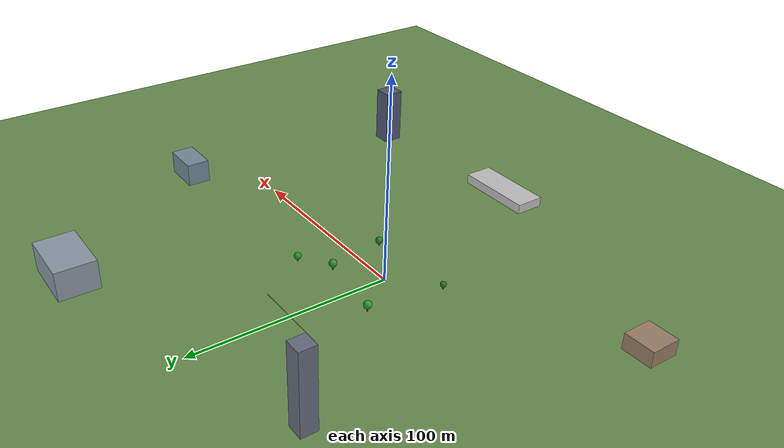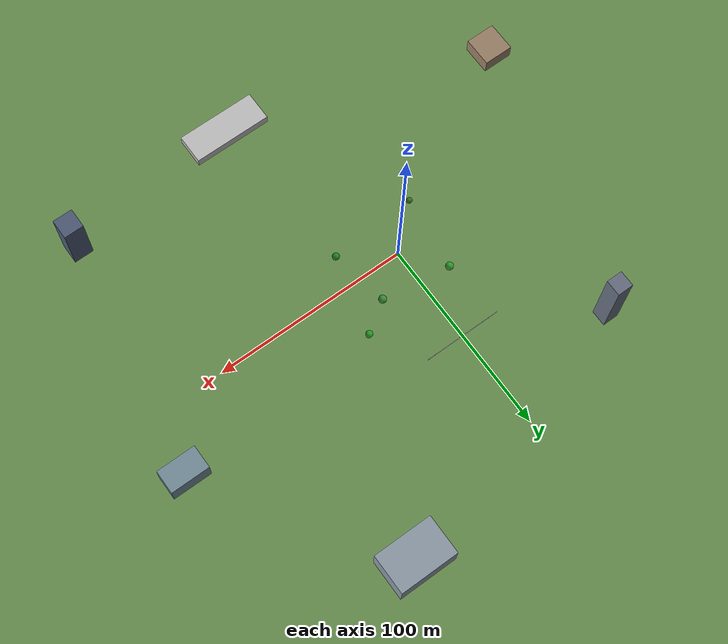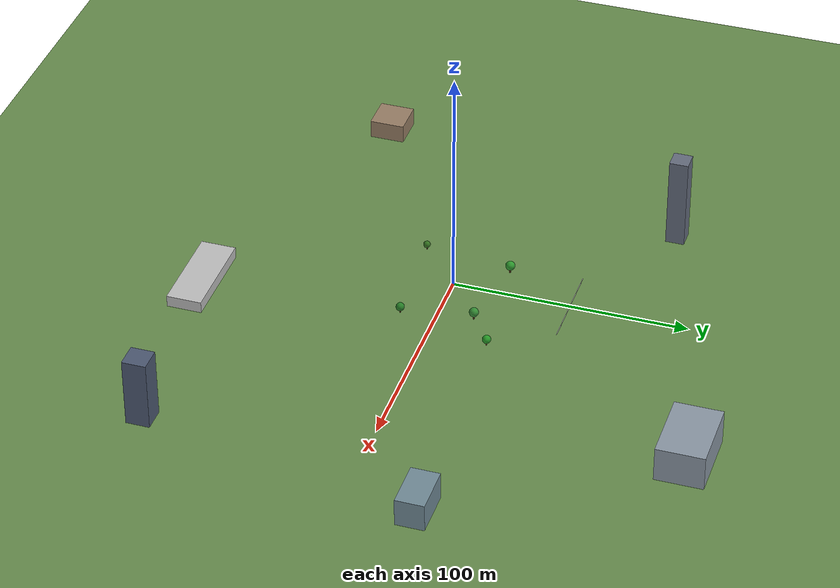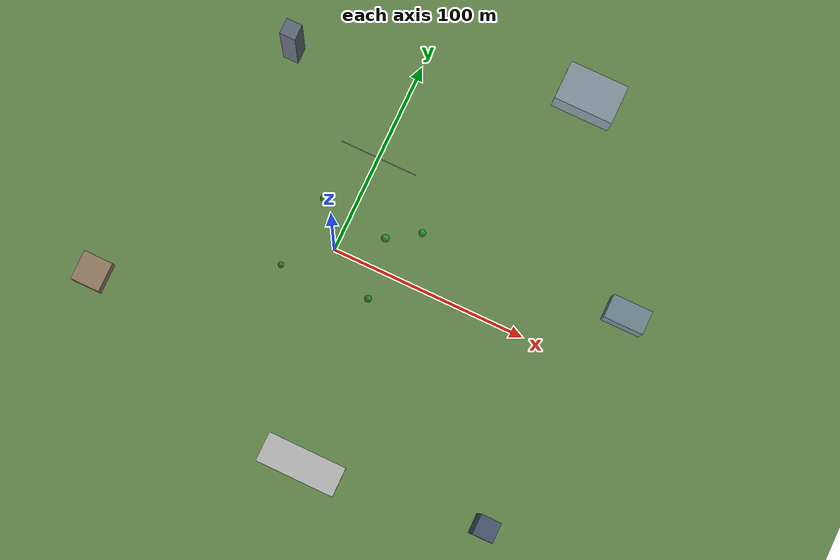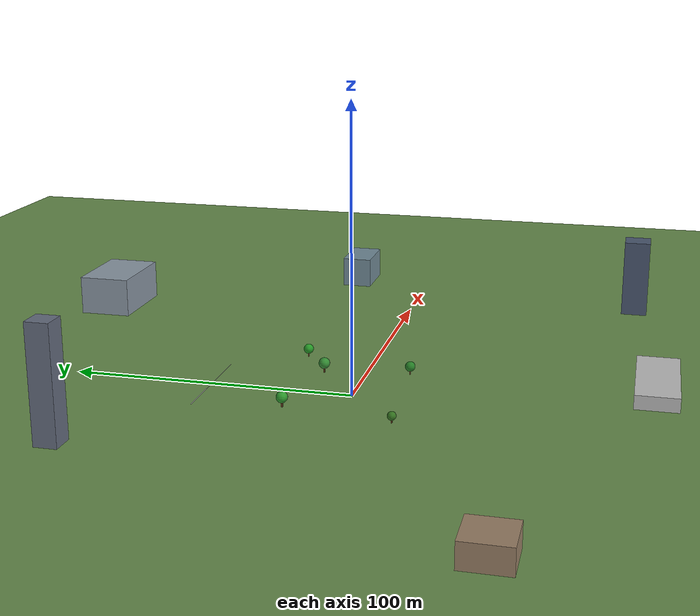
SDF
<?xml version="1.0" encoding="UTF-8"?>
<sdf version="1.9">
  <world name="scene">
    <physics type="ode">
      <max_step_size>0.004</max_step_size>
      <real_time_factor>1.0</real_time_factor>
      <real_time_update_rate>250</real_time_update_rate>
    </physics>
    <gravity>0 0 -9.8</gravity>
    <magnetic_field>6e-06 2.3e-05 -4.2e-05</magnetic_field>
    <atmosphere type="adiabatic"/>

    <!-- Scene: sky + ambient -->
    <scene>
      <grid>false</grid>
      <ambient>0.45 0.45 0.5 1</ambient>
      <background>0.6 0.7 0.9 1</background>
      <shadows>true</shadows>
    </scene>

    <!-- ====== GROUND ====== -->
    <model name="ground_plane">
      <static>true</static>
      <link name="link">
        <collision name="collision">
          <geometry>
            <plane>
              <normal>0 0 1</normal>
              <size>1 1</size>
            </plane>
          </geometry>
          <surface>
            <friction><ode/></friction>
            <bounce/><contact/>
          </surface>
        </collision>
        <visual name="visual">
          <geometry>
            <plane>
              <normal>0 0 1</normal>
              <size>500 500</size>
            </plane>
          </geometry>
          <material>
            <ambient>0.35 0.45 0.25 1</ambient>
            <diffuse>0.4 0.55 0.3 1</diffuse>
            <specular>0.05 0.05 0.05 1</specular>
          </material>
        </visual>
        <pose>0 0 0 0 -0 0</pose>
        <inertial>
          <pose>0 0 0 0 -0 0</pose>
          <mass>1</mass>
          <inertia>
            <ixx>1</ixx><ixy>0</ixy><ixz>0</ixz>
            <iyy>1</iyy><iyz>0</iyz>
            <izz>1</izz>
          </inertia>
        </inertial>
        <enable_wind>false</enable_wind>
      </link>
      <pose>0 0 0 0 -0 0</pose>
      <self_collide>false</self_collide>
    </model>

    <!-- ====== SUN ====== -->
    <light name="sunUTC" type="directional">
      <pose>0 0 500 0 -0 0</pose>
      <cast_shadows>true</cast_shadows>
      <intensity>1.2</intensity>
      <direction>0.001 0.625 -0.78</direction>
      <diffuse>0.95 0.95 0.92 1</diffuse>
      <specular>0.3 0.3 0.3 1</specular>
      <attenuation>
        <range>2000</range>
        <linear>0</linear>
        <constant>1</constant>
        <quadratic>0</quadratic>
      </attenuation>
      <spot>
        <inner_angle>0</inner_angle>
        <outer_angle>0</outer_angle>
        <falloff>0</falloff>
      </spot>
    </light>

    <!-- ====== BUILDINGS (box primitives) ====== -->

    <!-- Building 1: large office (north-east) -->
    <model name="building_01">
      <static>true</static>
      <link name="link">
        <collision name="collision">
          <geometry><box><size>30 20 15</size></box></geometry>
        </collision>
        <visual name="visual">
          <geometry><box><size>30 20 15</size></box></geometry>
          <material>
            <ambient>0.5 0.55 0.6 1</ambient>
            <diffuse>0.55 0.6 0.65 1</diffuse>
            <specular>0.1 0.1 0.1 1</specular>
          </material>
        </visual>
        <pose>0 0 7.5 0 -0 0</pose>
      </link>
      <pose>80 120 0 0 -0 0</pose>
      <self_collide>false</self_collide>
    </model>

    <!-- Building 2: tall tower (east) -->
    <model name="building_02">
      <static>true</static>
      <link name="link">
        <collision name="collision">
          <geometry><box><size>8 8 40</size></box></geometry>
        </collision>
        <visual name="visual">
          <geometry><box><size>8 8 40</size></box></geometry>
          <material>
            <ambient>0.35 0.38 0.45 1</ambient>
            <diffuse>0.4 0.43 0.5 1</diffuse>
            <specular>0.15 0.15 0.15 1</specular>
          </material>
        </visual>
        <pose>0 0 20 0 -0 0</pose>
      </link>
      <pose>-60 80 0 0 -0 0</pose>
      <self_collide>false</self_collide>
    </model>

    <!-- Building 3: small square (south) -->
    <model name="building_03">
      <static>true</static>
      <link name="link">
        <collision name="collision">
          <geometry><box><size>15 15 8</size></box></geometry>
        </collision>
        <visual name="visual">
          <geometry><box><size>15 15 8</size></box></geometry>
          <material>
            <ambient>0.55 0.45 0.35 1</ambient>
            <diffuse>0.6 0.5 0.4 1</diffuse>
          </material>
        </visual>
        <pose>0 0 4 0 -0 0</pose>
      </link>
      <pose>-100 -60 0 0 -0 0</pose>
      <self_collide>false</self_collide>
    </model>

    <!-- Building 4: wide low building (north-west) -->
    <model name="building_04">
      <static>true</static>
      <link name="link">
        <collision name="collision">
          <geometry><box><size>40 15 5</size></box></geometry>
        </collision>
        <visual name="visual">
          <geometry><box><size>40 15 5</size></box></geometry>
          <material>
            <ambient>0.7 0.7 0.7 1</ambient>
            <diffuse>0.75 0.75 0.75 1</diffuse>
          </material>
        </visual>
        <pose>0 0 2.5 0 -0 0</pose>
      </link>
      <pose>30 -100 0 0 -0 0</pose>
      <self_collide>false</self_collide>
    </model>

    <!-- Building 5: medium office (far east) -->
    <model name="building_05">
      <static>true</static>
      <link name="link">
        <collision name="collision">
          <geometry><box><size>20 12 12</size></box></geometry>
        </collision>
        <visual name="visual">
          <geometry><box><size>20 12 12</size></box></geometry>
          <material>
            <ambient>0.4 0.5 0.55 1</ambient>
            <diffuse>0.45 0.55 0.6 1</diffuse>
          </material>
        </visual>
        <pose>0 0 6 0 -0 0</pose>
      </link>
      <pose>140 30 0 0 -0 0</pose>
      <self_collide>false</self_collide>
    </model>

    <!-- Building 6: highrise (south-east) -->
    <model name="building_06">
      <static>true</static>
      <link name="link">
        <collision name="collision">
          <geometry><box><size>10 10 30</size></box></geometry>
        </collision>
        <visual name="visual">
          <geometry><box><size>10 10 30</size></box></geometry>
          <material>
            <ambient>0.25 0.3 0.4 1</ambient>
            <diffuse>0.3 0.35 0.45 1</diffuse>
            <specular>0.2 0.2 0.2 1</specular>
          </material>
        </visual>
        <pose>0 0 15 0 -0 0</pose>
      </link>
      <pose>120 -90 0 0 -0 0</pose>
      <self_collide>false</self_collide>
    </model>

    <!-- ====== TREES ====== -->

    <!-- Tree macro: trunk + foliage -->
    <model name="tree_01">
      <static>true</static>
      <!-- trunk -->
      <link name="trunk">
        <collision name="col">
          <geometry><box><size>0.5 0.5 2</size></box></geometry>
        </collision>
        <visual name="vis">
          <geometry><box><size>0.5 0.5 2</size></box></geometry>
          <material>
            <ambient>0.35 0.2 0.1 1</ambient>
            <diffuse>0.4 0.25 0.12 1</diffuse>
          </material>
        </visual>
        <pose>0 0 1 0 -0 0</pose>
      </link>
      <!-- foliage -->
      <link name="foliage">
        <collision name="col">
          <geometry><sphere><radius>2.0</radius></sphere></geometry>
        </collision>
        <visual name="vis">
          <geometry><sphere><radius>2.0</radius></sphere></geometry>
          <material>
            <ambient>0.15 0.45 0.15 1</ambient>
            <diffuse>0.2 0.55 0.2 1</diffuse>
          </material>
        </visual>
        <pose>0 0 3.5 0 -0 0</pose>
      </link>
      <pose>20 15 0 0 -0 0</pose>
      <self_collide>false</self_collide>
    </model>

    <model name="tree_02">
      <static>true</static>
      <link name="trunk">
        <collision name="col">
          <geometry><box><size>0.4 0.4 1.5</size></box></geometry>
        </collision>
        <visual name="vis">
          <geometry><box><size>0.4 0.4 1.5</size></box></geometry>
          <material>
            <ambient>0.35 0.2 0.1 1</ambient>
            <diffuse>0.4 0.25 0.12 1</diffuse>
          </material>
        </visual>
        <pose>0 0 0.75 0 -0 0</pose>
      </link>
      <link name="foliage">
        <collision name="col">
          <geometry><sphere><radius>1.8</radius></sphere></geometry>
        </collision>
        <visual name="vis">
          <geometry><sphere><radius>1.8</radius></sphere></geometry>
          <material>
            <ambient>0.1 0.4 0.1 1</ambient>
            <diffuse>0.15 0.5 0.15 1</diffuse>
          </material>
        </visual>
        <pose>0 0 3 0 -0 0</pose>
      </link>
      <pose>25 -15 0 0 -0 0</pose>
      <self_collide>false</self_collide>
    </model>

    <model name="tree_03">
      <static>true</static>
      <link name="trunk">
        <collision name="col">
          <geometry><box><size>0.5 0.5 2</size></box></geometry>
        </collision>
        <visual name="vis">
          <geometry><box><size>0.5 0.5 2</size></box></geometry>
          <material>
            <ambient>0.35 0.2 0.1 1</ambient>
            <diffuse>0.4 0.25 0.12 1</diffuse>
          </material>
        </visual>
        <pose>0 0 1 0 -0 0</pose>
      </link>
      <link name="foliage">
        <collision name="col">
          <geometry><sphere><radius>2.0</radius></sphere></geometry>
        </collision>
        <visual name="vis">
          <geometry><sphere><radius>2.0</radius></sphere></geometry>
          <material>
            <ambient>0.12 0.5 0.12 1</ambient>
            <diffuse>0.18 0.6 0.18 1</diffuse>
          </material>
        </visual>
        <pose>0 0 3.5 0 -0 0</pose>
      </link>
      <pose>-15 20 0 0 -0 0</pose>
      <self_collide>false</self_collide>
    </model>

    <model name="tree_04">
      <static>true</static>
      <link name="trunk">
        <collision name="col">
          <geometry><box><size>0.4 0.4 1.5</size></box></geometry>
        </collision>
        <visual name="vis">
          <geometry><box><size>0.4 0.4 1.5</size></box></geometry>
          <material>
            <ambient>0.35 0.2 0.1 1</ambient>
            <diffuse>0.4 0.25 0.12 1</diffuse>
          </material>
        </visual>
        <pose>0 0 0.75 0 -0 0</pose>
      </link>
      <link name="foliage">
        <collision name="col">
          <geometry><sphere><radius>1.5</radius></sphere></geometry>
        </collision>
        <visual name="vis">
          <geometry><sphere><radius>1.5</radius></sphere></geometry>
          <material>
            <ambient>0.15 0.35 0.1 1</ambient>
            <diffuse>0.2 0.45 0.12 1</diffuse>
          </material>
        </visual>
        <pose>0 0 2.5 0 -0 0</pose>
      </link>
      <pose>-20 -18 0 0 -0 0</pose>
      <self_collide>false</self_collide>
    </model>

    <model name="tree_05">
      <static>true</static>
      <link name="trunk">
        <collision name="col">
          <geometry><box><size>0.4 0.4 1.5</size></box></geometry>
        </collision>
        <visual name="vis">
          <geometry><box><size>0.4 0.4 1.5</size></box></geometry>
          <material>
            <ambient>0.35 0.2 0.1 1</ambient>
            <diffuse>0.4 0.25 0.12 1</diffuse>
          </material>
        </visual>
        <pose>0 0 0.75 0 -0 0</pose>
      </link>
      <link name="foliage">
        <collision name="col">
          <geometry><sphere><radius>1.8</radius></sphere></geometry>
        </collision>
        <visual name="vis">
          <geometry><sphere><radius>1.8</radius></sphere></geometry>
          <material>
            <ambient>0.1 0.5 0.1 1</ambient>
            <diffuse>0.15 0.6 0.15 1</diffuse>
          </material>
        </visual>
        <pose>0 0 3 0 -0 0</pose>
      </link>
      <pose>35 25 0 0 -0 0</pose>
      <self_collide>false</self_collide>
    </model>

    <!-- ====== ROAD MARKERS (visual only) ====== -->
    <model name="road_marker_1">
      <static>true</static>
      <link name="link">
        <visual name="vis">
          <geometry><box><size>40 0.3 0.02</size></box></geometry>
          <material>
            <ambient>0.6 0.6 0.6 1</ambient>
            <diffuse>0.65 0.65 0.65 1</diffuse>
          </material>
        </visual>
        <pose>0 0 0.01 0 -0 0</pose>
      </link>
      <pose>0 50 0 0 -0 0</pose>
      <self_collide>false</self_collide>
    </model>

    <spherical_coordinates>
      <surface_model>EARTH_WGS84</surface_model>
      <world_frame_orientation>ENU</world_frame_orientation>
      <latitude_deg>47.397971057728974</latitude_deg>
      <longitude_deg>8.546163739800146</longitude_deg>
      <elevation>0</elevation>
    </spherical_coordinates>
  </world>
</sdf>
